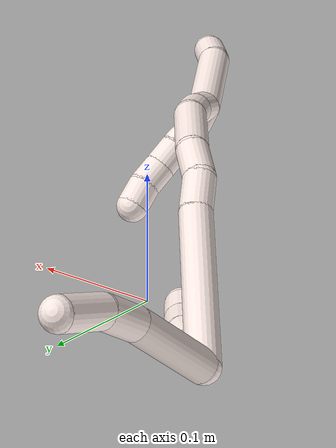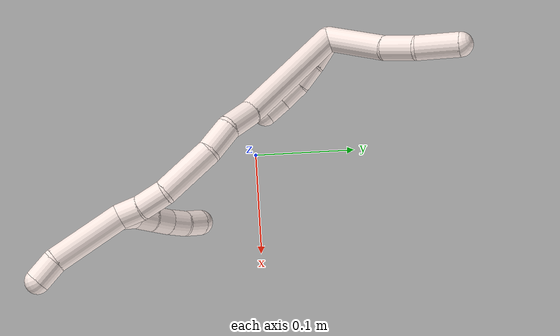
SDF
<sdf version="1.7">
 <world name="default">
  <model name="11">
   <static>0</static>
   <link name="11">
    <collision name="collision-cylinder-e_1_2_8">
     <pose>0.017133 -0.003195 0.031247 0.101884 0.499354 0.026001</pose>
     <geometry><cylinder><radius>0.0125</radius><length>0.071558</length></cylinder></geometry>
     <surface>
      <friction><ode><mu>1.16</mu><mu2>1.16</mu2><slip1>0</slip1><slip2>0</slip2></ode></friction>
      <contact><ode><kp>1e+06</kp><kd>1</kd><max_vel>0</max_vel><min_depth>0.001</min_depth></ode></contact>
     </surface>
    </collision>
    <visual name="visual-cylinder-e_1_2_8">
     <pose>0.017133 -0.003195 0.031247 0.101884 0.499354 0.026001</pose>
     <geometry><cylinder><radius>0.0125</radius><length>0.071558</length></cylinder></geometry>
     <material><ambient>1 0.933333 0.909804 1</ambient></material>
    </visual>
    <collision name="collision-cylinder-e_2_8_9">
     <pose>0.040441 -0.005238 0.07869 -0.070969 0.363431 -0.013045</pose>
     <geometry><cylinder><radius>0.0125</radius><length>0.034741</length></cylinder></geometry>
     <surface>
      <friction><ode><mu>1.16</mu><mu2>1.16</mu2><slip1>0</slip1><slip2>0</slip2></ode></friction>
      <contact><ode><kp>1e+06</kp><kd>1</kd><max_vel>0</max_vel><min_depth>0.001</min_depth></ode></contact>
     </surface>
    </collision>
    <visual name="visual-cylinder-e_2_8_9">
     <pose>0.040441 -0.005238 0.07869 -0.070969 0.363431 -0.013045</pose>
     <geometry><cylinder><radius>0.0125</radius><length>0.034741</length></cylinder></geometry>
     <material><ambient>1 0.933333 0.909804 1</ambient></material>
    </visual>
    <collision name="collision-cylinder-e_3_9_6">
     <pose>0.052386 0.00303 0.114721 -0.344461 0.267254 -0.04676</pose>
     <geometry><cylinder><radius>0.0125</radius><length>0.043701</length></cylinder></geometry>
     <surface>
      <friction><ode><mu>1.16</mu><mu2>1.16</mu2><slip1>0</slip1><slip2>0</slip2></ode></friction>
      <contact><ode><kp>1e+06</kp><kd>1</kd><max_vel>0</max_vel><min_depth>0.001</min_depth></ode></contact>
     </surface>
    </collision>
    <visual name="visual-cylinder-e_3_9_6">
     <pose>0.052386 0.00303 0.114721 -0.344461 0.267254 -0.04676</pose>
     <geometry><cylinder><radius>0.0125</radius><length>0.043701</length></cylinder></geometry>
     <material><ambient>1 0.933333 0.909804 1</ambient></material>
    </visual>
    <collision name="collision-cylinder-e_1_2_10">
     <pose>0.01023 -0.006479 -0.009858 2.56017 0.714415 1.7901</pose>
     <geometry><cylinder><radius>0.0125</radius><length>0.03123</length></cylinder></geometry>
     <surface>
      <friction><ode><mu>1.16</mu><mu2>1.16</mu2><slip1>0</slip1><slip2>0</slip2></ode></friction>
      <contact><ode><kp>1e+06</kp><kd>1</kd><max_vel>0</max_vel><min_depth>0.001</min_depth></ode></contact>
     </surface>
    </collision>
    <visual name="visual-cylinder-e_1_2_10">
     <pose>0.01023 -0.006479 -0.009858 2.56017 0.714415 1.7901</pose>
     <geometry><cylinder><radius>0.0125</radius><length>0.03123</length></cylinder></geometry>
     <material><ambient>1 0.933333 0.909804 1</ambient></material>
    </visual>
    <collision name="collision-cylinder-e_2_10_11">
     <pose>0.027235 -0.016992 -0.028541 2.7128 0.609526 1.93065</pose>
     <geometry><cylinder><radius>0.0125</radius><length>0.023667</length></cylinder></geometry>
     <surface>
      <friction><ode><mu>1.16</mu><mu2>1.16</mu2><slip1>0</slip1><slip2>0</slip2></ode></friction>
      <contact><ode><kp>1e+06</kp><kd>1</kd><max_vel>0</max_vel><min_depth>0.001</min_depth></ode></contact>
     </surface>
    </collision>
    <visual name="visual-cylinder-e_2_10_11">
     <pose>0.027235 -0.016992 -0.028541 2.7128 0.609526 1.93065</pose>
     <geometry><cylinder><radius>0.0125</radius><length>0.023667</length></cylinder></geometry>
     <material><ambient>1 0.933333 0.909804 1</ambient></material>
    </visual>
    <collision name="collision-cylinder-e_3_11_12">
     <pose>0.039316 -0.025984 -0.046786 2.65715 0.462356 1.52236</pose>
     <geometry><cylinder><radius>0.0125</radius><length>0.023791</length></cylinder></geometry>
     <surface>
      <friction><ode><mu>1.16</mu><mu2>1.16</mu2><slip1>0</slip1><slip2>0</slip2></ode></friction>
      <contact><ode><kp>1e+06</kp><kd>1</kd><max_vel>0</max_vel><min_depth>0.001</min_depth></ode></contact>
     </surface>
    </collision>
    <visual name="visual-cylinder-e_3_11_12">
     <pose>0.039316 -0.025984 -0.046786 2.65715 0.462356 1.52236</pose>
     <geometry><cylinder><radius>0.0125</radius><length>0.023791</length></cylinder></geometry>
     <material><ambient>1 0.933333 0.909804 1</ambient></material>
    </visual>
    <collision name="collision-cylinder-e_4_12_5">
     <pose>0.049097 -0.036543 -0.064092 2.52392 0.433373 1.20797</pose>
     <geometry><cylinder><radius>0.0125</radius><length>0.021312</length></cylinder></geometry>
     <surface>
      <friction><ode><mu>1.16</mu><mu2>1.16</mu2><slip1>0</slip1><slip2>0</slip2></ode></friction>
      <contact><ode><kp>1e+06</kp><kd>1</kd><max_vel>0</max_vel><min_depth>0.001</min_depth></ode></contact>
     </surface>
    </collision>
    <visual name="visual-cylinder-e_4_12_5">
     <pose>0.049097 -0.036543 -0.064092 2.52392 0.433373 1.20797</pose>
     <geometry><cylinder><radius>0.0125</radius><length>0.021312</length></cylinder></geometry>
     <material><ambient>1 0.933333 0.909804 1</ambient></material>
    </visual>
    <collision name="collision-cylinder-e_1_2_13">
     <pose>0.030219 -0.052606 -0.022949 1.98215 0.484638 0.72192</pose>
     <geometry><cylinder><radius>0.0125</radius><length>0.129725</length></cylinder></geometry>
     <surface>
      <friction><ode><mu>1.16</mu><mu2>1.16</mu2><slip1>0</slip1><slip2>0</slip2></ode></friction>
      <contact><ode><kp>1e+06</kp><kd>1</kd><max_vel>0</max_vel><min_depth>0.001</min_depth></ode></contact>
     </surface>
    </collision>
    <visual name="visual-cylinder-e_1_2_13">
     <pose>0.030219 -0.052606 -0.022949 1.98215 0.484638 0.72192</pose>
     <geometry><cylinder><radius>0.0125</radius><length>0.129725</length></cylinder></geometry>
     <material><ambient>1 0.933333 0.909804 1</ambient></material>
    </visual>
    <collision name="collision-cylinder-e_2_13_14">
     <pose>0.06578 -0.118415 -0.051531 1.97407 0.356272 0.532202</pose>
     <geometry><cylinder><radius>0.0125</radius><length>0.030633</length></cylinder></geometry>
     <surface>
      <friction><ode><mu>1.16</mu><mu2>1.16</mu2><slip1>0</slip1><slip2>0</slip2></ode></friction>
      <contact><ode><kp>1e+06</kp><kd>1</kd><max_vel>0</max_vel><min_depth>0.001</min_depth></ode></contact>
     </surface>
    </collision>
    <visual name="visual-cylinder-e_2_13_14">
     <pose>0.06578 -0.118415 -0.051531 1.97407 0.356272 0.532202</pose>
     <geometry><cylinder><radius>0.0125</radius><length>0.030633</length></cylinder></geometry>
     <material><ambient>1 0.933333 0.909804 1</ambient></material>
    </visual>
    <collision name="collision-cylinder-e_3_14_15">
     <pose>0.080218 -0.141915 -0.064783 2.20783 0.617472 1.1283</pose>
     <geometry><cylinder><radius>0.0125</radius><length>0.031422</length></cylinder></geometry>
     <surface>
      <friction><ode><mu>1.16</mu><mu2>1.16</mu2><slip1>0</slip1><slip2>0</slip2></ode></friction>
      <contact><ode><kp>1e+06</kp><kd>1</kd><max_vel>0</max_vel><min_depth>0.001</min_depth></ode></contact>
     </surface>
    </collision>
    <visual name="visual-cylinder-e_3_14_15">
     <pose>0.080218 -0.141915 -0.064783 2.20783 0.617472 1.1283</pose>
     <geometry><cylinder><radius>0.0125</radius><length>0.031422</length></cylinder></geometry>
     <material><ambient>1 0.933333 0.909804 1</ambient></material>
    </visual>
    <collision name="collision-cylinder-e_4_15_16">
     <pose>0.102284 -0.168628 -0.09219 2.44906 0.467213 1.16606</pose>
     <geometry><cylinder><radius>0.0125</radius><length>0.057592</length></cylinder></geometry>
     <surface>
      <friction><ode><mu>1.16</mu><mu2>1.16</mu2><slip1>0</slip1><slip2>0</slip2></ode></friction>
      <contact><ode><kp>1e+06</kp><kd>1</kd><max_vel>0</max_vel><min_depth>0.001</min_depth></ode></contact>
     </surface>
    </collision>
    <visual name="visual-cylinder-e_4_15_16">
     <pose>0.102284 -0.168628 -0.09219 2.44906 0.467213 1.16606</pose>
     <geometry><cylinder><radius>0.0125</radius><length>0.057592</length></cylinder></geometry>
     <material><ambient>1 0.933333 0.909804 1</ambient></material>
    </visual>
    <collision name="collision-cylinder-e_5_16_17">
     <pose>0.118659 -0.190577 -0.124216 2.71701 0.248293 1.04962</pose>
     <geometry><cylinder><radius>0.0125</radius><length>0.027713</length></cylinder></geometry>
     <surface>
      <friction><ode><mu>1.16</mu><mu2>1.16</mu2><slip1>0</slip1><slip2>0</slip2></ode></friction>
      <contact><ode><kp>1e+06</kp><kd>1</kd><max_vel>0</max_vel><min_depth>0.001</min_depth></ode></contact>
     </surface>
    </collision>
    <visual name="visual-cylinder-e_5_16_17">
     <pose>0.118659 -0.190577 -0.124216 2.71701 0.248293 1.04962</pose>
     <geometry><cylinder><radius>0.0125</radius><length>0.027713</length></cylinder></geometry>
     <material><ambient>1 0.933333 0.909804 1</ambient></material>
    </visual>
    <collision name="collision-cylinder-e_6_17_1">
     <pose>0.122812 -0.200297 -0.147094 2.76661 0.065244 0.340684</pose>
     <geometry><cylinder><radius>0.0125</radius><length>0.022914</length></cylinder></geometry>
     <surface>
      <friction><ode><mu>1.16</mu><mu2>1.16</mu2><slip1>0</slip1><slip2>0</slip2></ode></friction>
      <contact><ode><kp>1e+06</kp><kd>1</kd><max_vel>0</max_vel><min_depth>0.001</min_depth></ode></contact>
     </surface>
    </collision>
    <visual name="visual-cylinder-e_6_17_1">
     <pose>0.122812 -0.200297 -0.147094 2.76661 0.065244 0.340684</pose>
     <geometry><cylinder><radius>0.0125</radius><length>0.022914</length></cylinder></geometry>
     <material><ambient>1 0.933333 0.909804 1</ambient></material>
    </visual>
    <collision name="collision-cylinder-e_1_1_18">
     <pose>0.13577 -0.229878 -0.18241 2.34192 0.332075 0.755046</pose>
     <geometry><cylinder><radius>0.0125</radius><length>0.074913</length></cylinder></geometry>
     <surface>
      <friction><ode><mu>1.16</mu><mu2>1.16</mu2><slip1>0</slip1><slip2>0</slip2></ode></friction>
      <contact><ode><kp>1e+06</kp><kd>1</kd><max_vel>0</max_vel><min_depth>0.001</min_depth></ode></contact>
     </surface>
    </collision>
    <visual name="visual-cylinder-e_1_1_18">
     <pose>0.13577 -0.229878 -0.18241 2.34192 0.332075 0.755046</pose>
     <geometry><cylinder><radius>0.0125</radius><length>0.074913</length></cylinder></geometry>
     <material><ambient>1 0.933333 0.909804 1</ambient></material>
    </visual>
    <collision name="collision-cylinder-e_2_18_4">
     <pose>0.15478 -0.261193 -0.215809 2.54506 0.572871 1.52793</pose>
     <geometry><cylinder><radius>0.0125</radius><length>0.025087</length></cylinder></geometry>
     <surface>
      <friction><ode><mu>1.16</mu><mu2>1.16</mu2><slip1>0</slip1><slip2>0</slip2></ode></friction>
      <contact><ode><kp>1e+06</kp><kd>1</kd><max_vel>0</max_vel><min_depth>0.001</min_depth></ode></contact>
     </surface>
    </collision>
    <visual name="visual-cylinder-e_2_18_4">
     <pose>0.15478 -0.261193 -0.215809 2.54506 0.572871 1.52793</pose>
     <geometry><cylinder><radius>0.0125</radius><length>0.025087</length></cylinder></geometry>
     <material><ambient>1 0.933333 0.909804 1</ambient></material>
    </visual>
    <collision name="collision-cylinder-e_1_1_19">
     <pose>0.1241 -0.194581 -0.156455 -1.44257 0.054152 -0.047621</pose>
     <geometry><cylinder><radius>0.0125</radius><length>0.02</length></cylinder></geometry>
     <surface>
      <friction><ode><mu>1.16</mu><mu2>1.16</mu2><slip1>0</slip1><slip2>0</slip2></ode></friction>
      <contact><ode><kp>1e+06</kp><kd>1</kd><max_vel>0</max_vel><min_depth>0.001</min_depth></ode></contact>
     </surface>
    </collision>
    <visual name="visual-cylinder-e_1_1_19">
     <pose>0.1241 -0.194581 -0.156455 -1.44257 0.054152 -0.047621</pose>
     <geometry><cylinder><radius>0.0125</radius><length>0.02</length></cylinder></geometry>
     <material><ambient>1 0.933333 0.909804 1</ambient></material>
    </visual>
    <collision name="collision-cylinder-e_2_19_20">
     <pose>0.127679 -0.17538 -0.153096 -1.35045 0.308661 -0.247878</pose>
     <geometry><cylinder><radius>0.0125</radius><length>0.02</length></cylinder></geometry>
     <surface>
      <friction><ode><mu>1.16</mu><mu2>1.16</mu2><slip1>0</slip1><slip2>0</slip2></ode></friction>
      <contact><ode><kp>1e+06</kp><kd>1</kd><max_vel>0</max_vel><min_depth>0.001</min_depth></ode></contact>
     </surface>
    </collision>
    <visual name="visual-cylinder-e_2_19_20">
     <pose>0.127679 -0.17538 -0.153096 -1.35045 0.308661 -0.247878</pose>
     <geometry><cylinder><radius>0.0125</radius><length>0.02</length></cylinder></geometry>
     <material><ambient>1 0.933333 0.909804 1</ambient></material>
    </visual>
    <collision name="collision-cylinder-e_3_20_21">
     <pose>0.133396 -0.156539 -0.149703 -1.43441 0.271265 -0.236925</pose>
     <geometry><cylinder><radius>0.0125</radius><length>0.02</length></cylinder></geometry>
     <surface>
      <friction><ode><mu>1.16</mu><mu2>1.16</mu2><slip1>0</slip1><slip2>0</slip2></ode></friction>
      <contact><ode><kp>1e+06</kp><kd>1</kd><max_vel>0</max_vel><min_depth>0.001</min_depth></ode></contact>
     </surface>
    </collision>
    <visual name="visual-cylinder-e_3_20_21">
     <pose>0.133396 -0.156539 -0.149703 -1.43441 0.271265 -0.236925</pose>
     <geometry><cylinder><radius>0.0125</radius><length>0.02</length></cylinder></geometry>
     <material><ambient>1 0.933333 0.909804 1</ambient></material>
    </visual>
    <collision name="collision-cylinder-e_4_21_22">
     <pose>0.138439 -0.137557 -0.146079 -1.33027 0.238578 -0.187473</pose>
     <geometry><cylinder><radius>0.0125</radius><length>0.02</length></cylinder></geometry>
     <surface>
      <friction><ode><mu>1.16</mu><mu2>1.16</mu2><slip1>0</slip1><slip2>0</slip2></ode></friction>
      <contact><ode><kp>1e+06</kp><kd>1</kd><max_vel>0</max_vel><min_depth>0.001</min_depth></ode></contact>
     </surface>
    </collision>
    <visual name="visual-cylinder-e_4_21_22">
     <pose>0.138439 -0.137557 -0.146079 -1.33027 0.238578 -0.187473</pose>
     <geometry><cylinder><radius>0.0125</radius><length>0.02</length></cylinder></geometry>
     <material><ambient>1 0.933333 0.909804 1</ambient></material>
    </visual>
    <collision name="collision-cylinder-e_5_22_3">
     <pose>0.141547 -0.118313 -0.141952 -1.38813 0.074546 -0.062046</pose>
     <geometry><cylinder><radius>0.0125</radius><length>0.02</length></cylinder></geometry>
     <surface>
      <friction><ode><mu>1.16</mu><mu2>1.16</mu2><slip1>0</slip1><slip2>0</slip2></ode></friction>
      <contact><ode><kp>1e+06</kp><kd>1</kd><max_vel>0</max_vel><min_depth>0.001</min_depth></ode></contact>
     </surface>
    </collision>
    <visual name="visual-cylinder-e_5_22_3">
     <pose>0.141547 -0.118313 -0.141952 -1.38813 0.074546 -0.062046</pose>
     <geometry><cylinder><radius>0.0125</radius><length>0.02</length></cylinder></geometry>
     <material><ambient>1 0.933333 0.909804 1</ambient></material>
    </visual>
    <collision name="collision-sphere-3">
     <pose>0.142292 -0.108507 -0.140141 0 -0 0</pose>
     <geometry><sphere><radius>0.0125</radius></sphere></geometry>
     <surface>
      <friction><ode><mu>1.16</mu><mu2>1.16</mu2><slip1>0</slip1><slip2>0</slip2></ode></friction>
      <contact><ode><kp>1e+06</kp><kd>1</kd><max_vel>0</max_vel><min_depth>0.001</min_depth></ode></contact>
     </surface>
    </collision>
    <visual name="visual-sphere-3">
     <pose>0.142292 -0.108507 -0.140141 0 -0 0</pose>
     <geometry><sphere><radius>0.0125</radius></sphere></geometry>
     <material><ambient>1 0.933333 0.909804 1</ambient></material>
    </visual>
    <collision name="collision-sphere-22">
     <pose>0.140802 -0.12812 -0.143764 0 -0 0</pose>
     <geometry><sphere><radius>0.0125</radius></sphere></geometry>
     <surface>
      <friction><ode><mu>1.16</mu><mu2>1.16</mu2><slip1>0</slip1><slip2>0</slip2></ode></friction>
      <contact><ode><kp>1e+06</kp><kd>1</kd><max_vel>0</max_vel><min_depth>0.001</min_depth></ode></contact>
     </surface>
    </collision>
    <visual name="visual-sphere-22">
     <pose>0.140802 -0.12812 -0.143764 0 -0 0</pose>
     <geometry><sphere><radius>0.0125</radius></sphere></geometry>
     <material><ambient>1 0.933333 0.909804 1</ambient></material>
    </visual>
    <collision name="collision-sphere-21">
     <pose>0.136076 -0.146994 -0.148393 0 -0 0</pose>
     <geometry><sphere><radius>0.0125</radius></sphere></geometry>
     <surface>
      <friction><ode><mu>1.16</mu><mu2>1.16</mu2><slip1>0</slip1><slip2>0</slip2></ode></friction>
      <contact><ode><kp>1e+06</kp><kd>1</kd><max_vel>0</max_vel><min_depth>0.001</min_depth></ode></contact>
     </surface>
    </collision>
    <visual name="visual-sphere-21">
     <pose>0.136076 -0.146994 -0.148393 0 -0 0</pose>
     <geometry><sphere><radius>0.0125</radius></sphere></geometry>
     <material><ambient>1 0.933333 0.909804 1</ambient></material>
    </visual>
    <collision name="collision-sphere-20">
     <pose>0.130717 -0.166083 -0.151013 0 -0 0</pose>
     <geometry><sphere><radius>0.0125</radius></sphere></geometry>
     <surface>
      <friction><ode><mu>1.16</mu><mu2>1.16</mu2><slip1>0</slip1><slip2>0</slip2></ode></friction>
      <contact><ode><kp>1e+06</kp><kd>1</kd><max_vel>0</max_vel><min_depth>0.001</min_depth></ode></contact>
     </surface>
    </collision>
    <visual name="visual-sphere-20">
     <pose>0.130717 -0.166083 -0.151013 0 -0 0</pose>
     <geometry><sphere><radius>0.0125</radius></sphere></geometry>
     <material><ambient>1 0.933333 0.909804 1</ambient></material>
    </visual>
    <collision name="collision-sphere-19">
     <pose>0.124641 -0.184677 -0.155178 0 -0 0</pose>
     <geometry><sphere><radius>0.0125</radius></sphere></geometry>
     <surface>
      <friction><ode><mu>1.16</mu><mu2>1.16</mu2><slip1>0</slip1><slip2>0</slip2></ode></friction>
      <contact><ode><kp>1e+06</kp><kd>1</kd><max_vel>0</max_vel><min_depth>0.001</min_depth></ode></contact>
     </surface>
    </collision>
    <visual name="visual-sphere-19">
     <pose>0.124641 -0.184677 -0.155178 0 -0 0</pose>
     <geometry><sphere><radius>0.0125</radius></sphere></geometry>
     <material><ambient>1 0.933333 0.909804 1</ambient></material>
    </visual>
    <collision name="collision-sphere-11">
     <pose>0.03401 -0.021026 -0.037365 0 -0 0</pose>
     <geometry><sphere><radius>0.0125</radius></sphere></geometry>
     <surface>
      <friction><ode><mu>1.16</mu><mu2>1.16</mu2><slip1>0</slip1><slip2>0</slip2></ode></friction>
      <contact><ode><kp>1e+06</kp><kd>1</kd><max_vel>0</max_vel><min_depth>0.001</min_depth></ode></contact>
     </surface>
    </collision>
    <visual name="visual-sphere-11">
     <pose>0.03401 -0.021026 -0.037365 0 -0 0</pose>
     <geometry><sphere><radius>0.0125</radius></sphere></geometry>
     <material><ambient>1 0.933333 0.909804 1</ambient></material>
    </visual>
    <collision name="collision-sphere-10">
     <pose>0.020461 -0.012958 -0.019716 0 -0 0</pose>
     <geometry><sphere><radius>0.0125</radius></sphere></geometry>
     <surface>
      <friction><ode><mu>1.16</mu><mu2>1.16</mu2><slip1>0</slip1><slip2>0</slip2></ode></friction>
      <contact><ode><kp>1e+06</kp><kd>1</kd><max_vel>0</max_vel><min_depth>0.001</min_depth></ode></contact>
     </surface>
    </collision>
    <visual name="visual-sphere-10">
     <pose>0.020461 -0.012958 -0.019716 0 -0 0</pose>
     <geometry><sphere><radius>0.0125</radius></sphere></geometry>
     <material><ambient>1 0.933333 0.909804 1</ambient></material>
    </visual>
    <collision name="collision-sphere-6">
     <pose>0.058157 0.010147 0.134558 0 -0 0</pose>
     <geometry><sphere><radius>0.0125</radius></sphere></geometry>
     <surface>
      <friction><ode><mu>1.16</mu><mu2>1.16</mu2><slip1>0</slip1><slip2>0</slip2></ode></friction>
      <contact><ode><kp>1e+06</kp><kd>1</kd><max_vel>0</max_vel><min_depth>0.001</min_depth></ode></contact>
     </surface>
    </collision>
    <visual name="visual-sphere-6">
     <pose>0.058157 0.010147 0.134558 0 -0 0</pose>
     <geometry><sphere><radius>0.0125</radius></sphere></geometry>
     <material><ambient>1 0.933333 0.909804 1</ambient></material>
    </visual>
    <collision name="collision-sphere-9">
     <pose>0.046616 -0.004087 0.094885 0 -0 0</pose>
     <geometry><sphere><radius>0.0125</radius></sphere></geometry>
     <surface>
      <friction><ode><mu>1.16</mu><mu2>1.16</mu2><slip1>0</slip1><slip2>0</slip2></ode></friction>
      <contact><ode><kp>1e+06</kp><kd>1</kd><max_vel>0</max_vel><min_depth>0.001</min_depth></ode></contact>
     </surface>
    </collision>
    <visual name="visual-sphere-9">
     <pose>0.046616 -0.004087 0.094885 0 -0 0</pose>
     <geometry><sphere><radius>0.0125</radius></sphere></geometry>
     <material><ambient>1 0.933333 0.909804 1</ambient></material>
    </visual>
    <collision name="collision-sphere-2">
     <geometry><sphere><radius>0.0125</radius></sphere></geometry>
     <surface>
      <friction><ode><mu>1.16</mu><mu2>1.16</mu2><slip1>0</slip1><slip2>0</slip2></ode></friction>
      <contact><ode><kp>1e+06</kp><kd>1</kd><max_vel>0</max_vel><min_depth>0.001</min_depth></ode></contact>
     </surface>
    </collision>
    <visual name="visual-sphere-2">
     <geometry><sphere><radius>0.0125</radius></sphere></geometry>
     <material><ambient>1 0.933333 0.909804 1</ambient></material>
    </visual>
    <collision name="collision-sphere-8">
     <pose>0.034266 -0.006389 0.062495 0 -0 0</pose>
     <geometry><sphere><radius>0.0125</radius></sphere></geometry>
     <surface>
      <friction><ode><mu>1.16</mu><mu2>1.16</mu2><slip1>0</slip1><slip2>0</slip2></ode></friction>
      <contact><ode><kp>1e+06</kp><kd>1</kd><max_vel>0</max_vel><min_depth>0.001</min_depth></ode></contact>
     </surface>
    </collision>
    <visual name="visual-sphere-8">
     <pose>0.034266 -0.006389 0.062495 0 -0 0</pose>
     <geometry><sphere><radius>0.0125</radius></sphere></geometry>
     <material><ambient>1 0.933333 0.909804 1</ambient></material>
    </visual>
    <collision name="collision-sphere-12">
     <pose>0.044622 -0.030942 -0.056208 0 -0 0</pose>
     <geometry><sphere><radius>0.0125</radius></sphere></geometry>
     <surface>
      <friction><ode><mu>1.16</mu><mu2>1.16</mu2><slip1>0</slip1><slip2>0</slip2></ode></friction>
      <contact><ode><kp>1e+06</kp><kd>1</kd><max_vel>0</max_vel><min_depth>0.001</min_depth></ode></contact>
     </surface>
    </collision>
    <visual name="visual-sphere-12">
     <pose>0.044622 -0.030942 -0.056208 0 -0 0</pose>
     <geometry><sphere><radius>0.0125</radius></sphere></geometry>
     <material><ambient>1 0.933333 0.909804 1</ambient></material>
    </visual>
    <collision name="collision-sphere-5">
     <pose>0.053572 -0.042144 -0.071976 0 -0 0</pose>
     <geometry><sphere><radius>0.0125</radius></sphere></geometry>
     <surface>
      <friction><ode><mu>1.16</mu><mu2>1.16</mu2><slip1>0</slip1><slip2>0</slip2></ode></friction>
      <contact><ode><kp>1e+06</kp><kd>1</kd><max_vel>0</max_vel><min_depth>0.001</min_depth></ode></contact>
     </surface>
    </collision>
    <visual name="visual-sphere-5">
     <pose>0.053572 -0.042144 -0.071976 0 -0 0</pose>
     <geometry><sphere><radius>0.0125</radius></sphere></geometry>
     <material><ambient>1 0.933333 0.909804 1</ambient></material>
    </visual>
    <collision name="collision-sphere-13">
     <pose>0.060438 -0.105211 -0.045897 0 -0 0</pose>
     <geometry><sphere><radius>0.0125</radius></sphere></geometry>
     <surface>
      <friction><ode><mu>1.16</mu><mu2>1.16</mu2><slip1>0</slip1><slip2>0</slip2></ode></friction>
      <contact><ode><kp>1e+06</kp><kd>1</kd><max_vel>0</max_vel><min_depth>0.001</min_depth></ode></contact>
     </surface>
    </collision>
    <visual name="visual-sphere-13">
     <pose>0.060438 -0.105211 -0.045897 0 -0 0</pose>
     <geometry><sphere><radius>0.0125</radius></sphere></geometry>
     <material><ambient>1 0.933333 0.909804 1</ambient></material>
    </visual>
    <collision name="collision-sphere-14">
     <pose>0.071122 -0.131618 -0.057164 0 -0 0</pose>
     <geometry><sphere><radius>0.0125</radius></sphere></geometry>
     <surface>
      <friction><ode><mu>1.16</mu><mu2>1.16</mu2><slip1>0</slip1><slip2>0</slip2></ode></friction>
      <contact><ode><kp>1e+06</kp><kd>1</kd><max_vel>0</max_vel><min_depth>0.001</min_depth></ode></contact>
     </surface>
    </collision>
    <visual name="visual-sphere-14">
     <pose>0.071122 -0.131618 -0.057164 0 -0 0</pose>
     <geometry><sphere><radius>0.0125</radius></sphere></geometry>
     <material><ambient>1 0.933333 0.909804 1</ambient></material>
    </visual>
    <collision name="collision-sphere-15">
     <pose>0.089315 -0.152213 -0.072403 0 -0 0</pose>
     <geometry><sphere><radius>0.0125</radius></sphere></geometry>
     <surface>
      <friction><ode><mu>1.16</mu><mu2>1.16</mu2><slip1>0</slip1><slip2>0</slip2></ode></friction>
      <contact><ode><kp>1e+06</kp><kd>1</kd><max_vel>0</max_vel><min_depth>0.001</min_depth></ode></contact>
     </surface>
    </collision>
    <visual name="visual-sphere-15">
     <pose>0.089315 -0.152213 -0.072403 0 -0 0</pose>
     <geometry><sphere><radius>0.0125</radius></sphere></geometry>
     <material><ambient>1 0.933333 0.909804 1</ambient></material>
    </visual>
    <collision name="collision-sphere-16">
     <pose>0.115254 -0.185044 -0.111977 0 -0 0</pose>
     <geometry><sphere><radius>0.0125</radius></sphere></geometry>
     <surface>
      <friction><ode><mu>1.16</mu><mu2>1.16</mu2><slip1>0</slip1><slip2>0</slip2></ode></friction>
      <contact><ode><kp>1e+06</kp><kd>1</kd><max_vel>0</max_vel><min_depth>0.001</min_depth></ode></contact>
     </surface>
    </collision>
    <visual name="visual-sphere-16">
     <pose>0.115254 -0.185044 -0.111977 0 -0 0</pose>
     <geometry><sphere><radius>0.0125</radius></sphere></geometry>
     <material><ambient>1 0.933333 0.909804 1</ambient></material>
    </visual>
    <collision name="collision-sphere-17">
     <pose>0.122065 -0.19611 -0.136455 0 -0 0</pose>
     <geometry><sphere><radius>0.0125</radius></sphere></geometry>
     <surface>
      <friction><ode><mu>1.16</mu><mu2>1.16</mu2><slip1>0</slip1><slip2>0</slip2></ode></friction>
      <contact><ode><kp>1e+06</kp><kd>1</kd><max_vel>0</max_vel><min_depth>0.001</min_depth></ode></contact>
     </surface>
    </collision>
    <visual name="visual-sphere-17">
     <pose>0.122065 -0.19611 -0.136455 0 -0 0</pose>
     <geometry><sphere><radius>0.0125</radius></sphere></geometry>
     <material><ambient>1 0.933333 0.909804 1</ambient></material>
    </visual>
    <collision name="collision-sphere-1">
     <pose>0.123559 -0.204484 -0.157732 0 -0 0</pose>
     <geometry><sphere><radius>0.0125</radius></sphere></geometry>
     <surface>
      <friction><ode><mu>1.16</mu><mu2>1.16</mu2><slip1>0</slip1><slip2>0</slip2></ode></friction>
      <contact><ode><kp>1e+06</kp><kd>1</kd><max_vel>0</max_vel><min_depth>0.001</min_depth></ode></contact>
     </surface>
    </collision>
    <visual name="visual-sphere-1">
     <pose>0.123559 -0.204484 -0.157732 0 -0 0</pose>
     <geometry><sphere><radius>0.0125</radius></sphere></geometry>
     <material><ambient>1 0.933333 0.909804 1</ambient></material>
    </visual>
    <collision name="collision-sphere-18">
     <pose>0.147981 -0.255272 -0.207089 0 -0 0</pose>
     <geometry><sphere><radius>0.0125</radius></sphere></geometry>
     <surface>
      <friction><ode><mu>1.16</mu><mu2>1.16</mu2><slip1>0</slip1><slip2>0</slip2></ode></friction>
      <contact><ode><kp>1e+06</kp><kd>1</kd><max_vel>0</max_vel><min_depth>0.001</min_depth></ode></contact>
     </surface>
    </collision>
    <visual name="visual-sphere-18">
     <pose>0.147981 -0.255272 -0.207089 0 -0 0</pose>
     <geometry><sphere><radius>0.0125</radius></sphere></geometry>
     <material><ambient>1 0.933333 0.909804 1</ambient></material>
    </visual>
    <collision name="collision-sphere-4">
     <pose>0.161579 -0.267115 -0.22453 0 -0 0</pose>
     <geometry><sphere><radius>0.0125</radius></sphere></geometry>
     <surface>
      <friction><ode><mu>1.16</mu><mu2>1.16</mu2><slip1>0</slip1><slip2>0</slip2></ode></friction>
      <contact><ode><kp>1e+06</kp><kd>1</kd><max_vel>0</max_vel><min_depth>0.001</min_depth></ode></contact>
     </surface>
    </collision>
    <visual name="visual-sphere-4">
     <pose>0.161579 -0.267115 -0.22453 0 -0 0</pose>
     <geometry><sphere><radius>0.0125</radius></sphere></geometry>
     <material><ambient>1 0.933333 0.909804 1</ambient></material>
    </visual>
    <inertial>
     <pose>0.07423 -0.101592 -0.061623 0 -0 0</pose>
     <mass>0.75</mass>
     <inertia>
      <ixx>0.000401</ixx>
      <ixy>0</ixy>
      <ixz>0</ixz>
      <iyy>0.000181</iyy>
      <iyz>0</iyz>
      <izz>4.2e-05</izz>
     </inertia>
    </inertial>
   </link>
   <pose>-0.113655 0.079728 0.011096 -0.961275 -0.161561 0.239476</pose>
  </model>
 </world>
</sdf>
